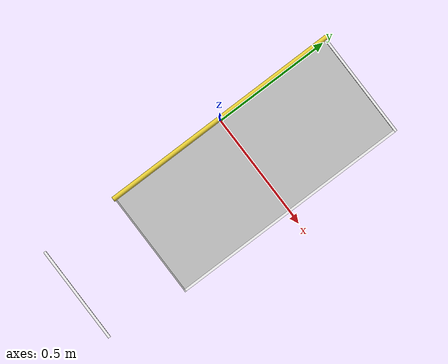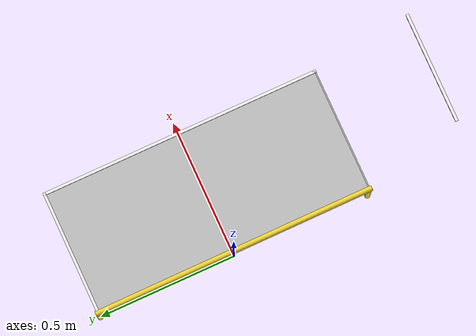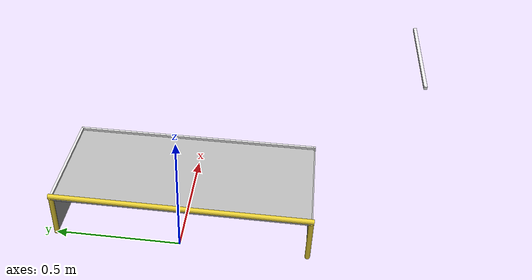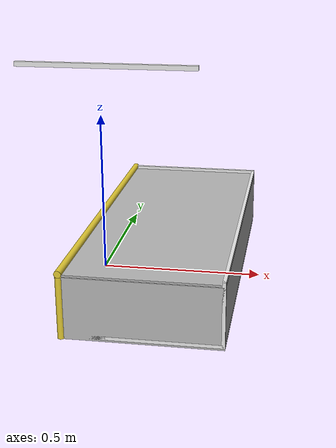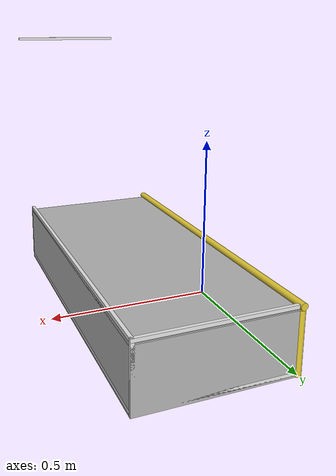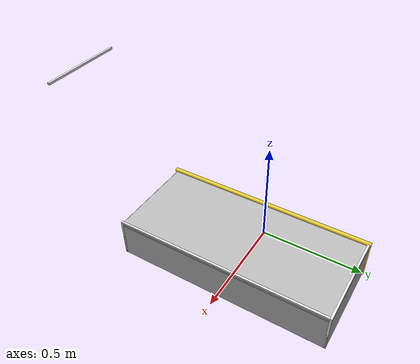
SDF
<?xml version="1.0" ?>
<sdf version="1.4">
  <model name="RoboCup SSL Goal">
    <static>true</static>

    <link name="left_post">
      <pose>0 0.5 0.09 0 0 0</pose>
      <collision name="collision">
        <geometry>
          <cylinder>
            <radius>0.01</radius>
            <length>0.18</length>
          </cylinder>
        </geometry>
      </collision>
      <visual name="visual">
        <geometry>
          <cylinder>
            <radius>0.01</radius>
            <length>0.18</length>
          </cylinder>
        </geometry>
        <material>
          <script>
            <uri>file://media/materials/scripts/gazebo.material</uri>
            <name>Gazebo/ZincYellow</name>
          </script>
        </material>
      </visual>
    </link>

    <link name="left_support_horiz_lower">
      <pose>0.22 0.5 0.01 0 0 0</pose>
      <collision name="collision">
        <geometry>
          <box>
            <size>0.45 0.01 0.01</size>
          </box>
        </geometry>
      </collision>
      <visual name="visual">
        <geometry>
          <box>
            <size>0.45 0.01 0.01</size>
          </box>
        </geometry>
        <material>
          <script>
            <uri>file://media/materials/scripts/gazebo.material</uri>
            <name>Gazebo/White</name>
          </script>
        </material>
      </visual>
    </link>

    <link name="left_support_horiz_upper">
      <pose>0.22 0.5 0.19 0 0 0</pose>
      <collision name="collision">
        <geometry>
          <box>
            <size>0.45 0.01 0.01</size>
          </box>
        </geometry>
      </collision>
      <visual name="visual">
        <geometry>
          <box>
            <size>0.45 0.01 0.01</size>
          </box>
        </geometry>
        <material>
          <script>
            <uri>file://media/materials/scripts/gazebo.material</uri>
            <name>Gazebo/White</name>
          </script>
        </material>
      </visual>
    </link>

    <link name="left_support_vertical">
      <pose>0.44 0.5 0.1 0 1.5708 0</pose>
      <collision name="collision">
        <geometry>
          <box>
            <size>0.19 0.01 0.01</size>
          </box>
        </geometry>
      </collision>
      <visual name="visual">
        <geometry>
          <box>
            <size>0.19 0.01 0.01</size>
          </box>
        </geometry>
        <material>
          <script>
            <uri>file://media/materials/scripts/gazebo.material</uri>
            <name>Gazebo/White</name>
          </script>
        </material>
      </visual>
    </link>

    <link name="right_support_horiz_lower">
      <pose>0.22 -0.5 0.01 0 0 0</pose>
      <collision name="collision">
        <geometry>
          <box>
            <size>0.45 0.01 0.01</size>
          </box>
        </geometry>
      </collision>
      <visual name="visual">
        <geometry>
          <box>
            <size>0.45 0.01 0.01</size>
          </box>
        </geometry>
        <material>
          <script>
            <uri>file://media/materials/scripts/gazebo.material</uri>
            <name>Gazebo/White</name>
          </script>
        </material>
      </visual>
    </link>

    <link name="right_support_horiz_upper">
      <pose>0.22 -0.8 0.79 0 0 0</pose>
      <collision name="collision">
        <geometry>
          <box>
            <size>0.38 0.01 0.01</size>
          </box>
        </geometry>
      </collision>
      <visual name="visual">
        <geometry>
          <box>
            <size>0.38 0.01 0.01</size>
          </box>
        </geometry>
        <material>
          <script>
            <uri>file://media/materials/scripts/gazebo.material</uri>
            <name>Gazebo/White</name>
          </script>
        </material>
      </visual>
    </link>

    <link name="right_support_vertical">
      <pose>0.44 -0.5 0.1 0 1.5708 0</pose>
      <collision name="collision">
        <geometry>
          <box>
            <size>0.19 0.01 0.01</size>
          </box>
        </geometry>
      </collision>
      <visual name="visual">
        <geometry>
          <box>
            <size>0.19 0.01 0.01</size>
          </box>
        </geometry>
        <material>
          <script>
            <uri>file://media/materials/scripts/gazebo.material</uri>
            <name>Gazebo/White</name>
          </script>
        </material>
      </visual>
    </link>

    <link name="center_support_horiz_lower">
      <pose>0.44 0 0.01 0 1.5708 0</pose>
      <collision name="collision">
        <geometry>
          <box>
            <size>0.01 1 0.01</size>
          </box>
        </geometry>
      </collision>
      <visual name="visual">
        <geometry>
          <box>
            <size>0.01 1 0.01</size>
          </box>
        </geometry>
        <material>
          <script>
            <uri>file://media/materials/scripts/gazebo.material</uri>
            <name>Gazebo/White</name>
          </script>
        </material>
      </visual>
    </link>

    <link name="center_support_horiz_upper">
      <pose>0.44 0 0.19 0 1.5708 0</pose>
      <collision name="collision">
        <geometry>
          <box>
            <size>0.01 1 0.01</size>
          </box>
        </geometry>
      </collision>
      <visual name="visual">
        <geometry>
          <box>
            <size>0.01 1 0.01</size>
          </box>
        </geometry>
        <material>
          <script>
            <uri>file://media/materials/scripts/gazebo.material</uri>
            <name>Gazebo/White</name>
          </script>
        </material>
      </visual>
    </link>

    <link name="right_post">
      <pose>0 -0.5 0.09 0 0 0</pose>
      <collision name="collision">
        <geometry>
          <cylinder>
            <radius>0.01</radius>
            <length>0.18</length>
          </cylinder>
        </geometry>
      </collision>
      <visual name="visual">
        <geometry>
          <cylinder>
            <radius>0.01</radius>
            <length>0.18</length>
          </cylinder>
        </geometry>
        <material>
          <script>
            <uri>file://media/materials/scripts/gazebo.material</uri>
            <name>Gazebo/ZincYellow</name>
          </script>
        </material>
      </visual>
    </link>

    <link name="crossbar">
      <pose>0 0 0.19 1.57 1.57 0</pose>
      <collision name="collision">
        <geometry>
          <cylinder>
            <radius>0.01</radius>
            <length>1.02</length>
          </cylinder>
        </geometry>
      </collision>
      <visual name="visual">
        <geometry>
          <cylinder>
            <radius>0.01</radius>
            <length>1.02</length>
          </cylinder>
        </geometry>
        <material>
          <script>
            <uri>file://media/materials/scripts/gazebo.material</uri>
            <name>Gazebo/ZincYellow</name>
          </script>
        </material>
      </visual>
    </link>

    <link name="center_net">
      <pose>0.44 0 0.09 0 0 0</pose>
      <collision name="collision">
        <geometry>
          <box>
            <size>0.01 1 0.18</size>
          </box>
        </geometry>
      </collision>
      <visual name="visual">
        <geometry>
          <box>
            <size>0.01 1 0.18</size>
          </box>
        </geometry>
        <material>
          <script>
            <uri>model://robocup09_spl_field/materials/scripts/</uri>
            <uri>model://robocup09_spl_field/materials/textures/</uri>
            <name>RoboCup/Net</name>
          </script>
        </material>
      </visual>
    </link>

    <link name="left_net">
      <pose>0.22 0.5 0.09 0 0 0</pose>
      <collision name="collision">
        <geometry>
          <box>
            <size>0.45 0.01 0.18</size>
          </box>
        </geometry>
      </collision>
      <visual name="visual">
        <geometry>
          <box>
            <size>0.45 0.01 0.18</size>
          </box>
        </geometry>
        <material>
          <script>
            <uri>model://robocup09_spl_field/materials/scripts/</uri>
            <uri>model://robocup09_spl_field/materials/textures/</uri>
            <name>RoboCup/Net</name>
          </script>
        </material>
      </visual>
    </link>

    <link name="right_net">
      <pose>0.22 -0.5 0.09 0 0 0</pose>
      <collision name="collision">
        <geometry>
          <box>
            <size>0.45 0.01 0.18</size>
          </box>
        </geometry>
      </collision>
      <visual name="visual">
        <geometry>
          <box>
            <size>0.45 0.01 0.18</size>
          </box>
        </geometry>
        <material>
          <script>
            <uri>model://robocup09_spl_field/materials/scripts/</uri>
            <uri>model://robocup09_spl_field/materials/textures/</uri>
            <name>RoboCup/Net</name>
          </script>
        </material>
      </visual>
    </link>

    <link name="upper_net">
      <pose>0.22 0 0.18 0 0 0</pose>
      <collision name="collision">
        <geometry>
          <box>
            <size>0.45 1 0.01</size>
          </box>
        </geometry>
      </collision>
      <visual name="visual">
        <geometry>
          <box>
            <size>0.45 1 0.01</size>
          </box>
        </geometry>
        <material>
          <script>
            <uri>model://robocup09_spl_field/materials/scripts/</uri>
            <uri>model://robocup09_spl_field/materials/textures/</uri>
            <name>RoboCup/Net</name>
          </script>
        </material>
      </visual>
    </link>
  </model>
</sdf>
